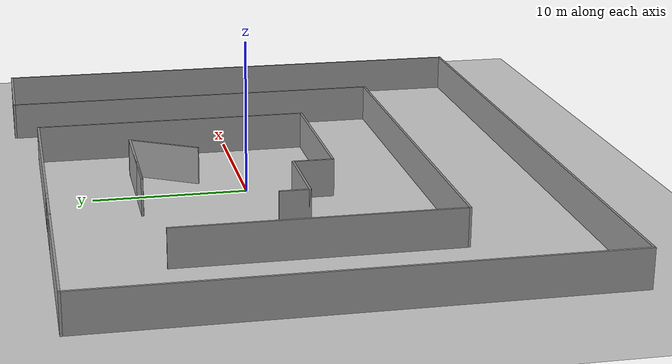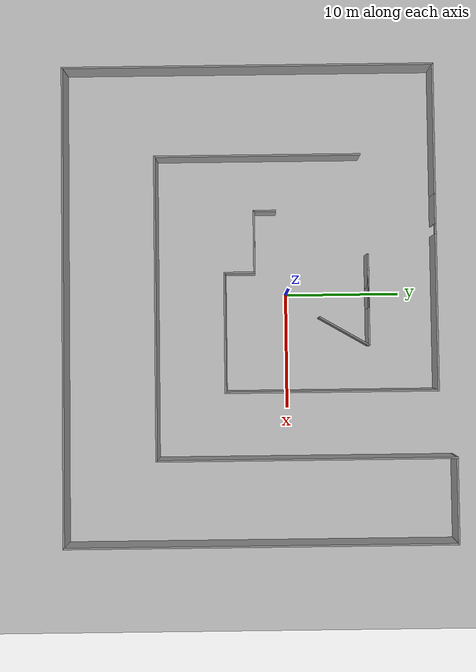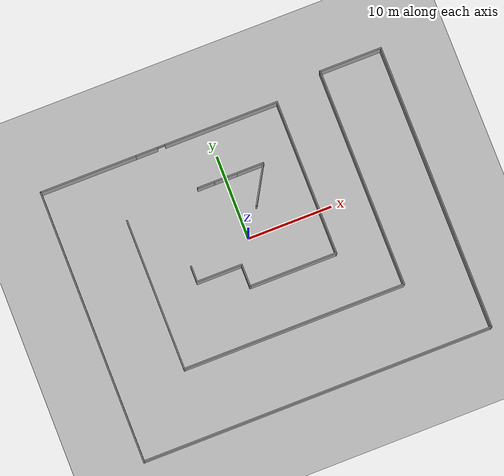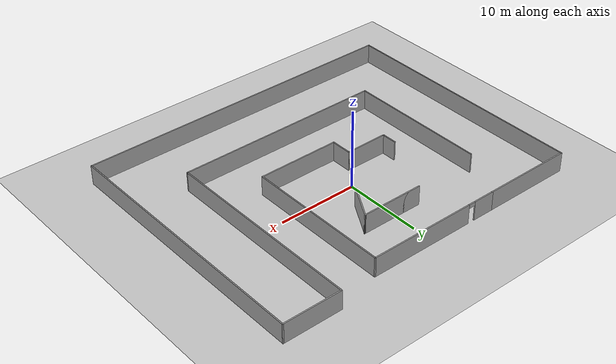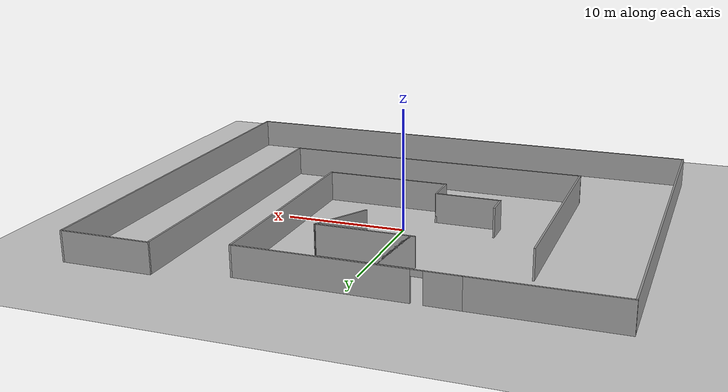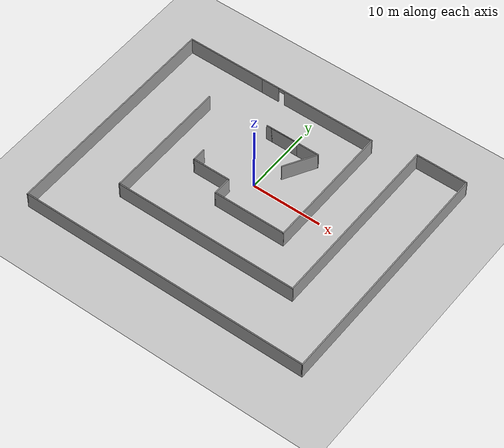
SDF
<sdf version="1.6">
 <world name="default">
  <light name="sun" type="directional">
   <pose>0 0 10 0 -0 0</pose>
   <diffuse>0.8 0.8 0.8 1</diffuse>
   <specular>0.2 0.2 0.2 1</specular>
   <attenuation>
    <range>1000</range>
    <constant>0.9</constant>
    <linear>0.01</linear>
    <quadratic>0.001</quadratic>
   </attenuation>
   <direction>-0.5 0.1 -0.9</direction>
  </light>
  <model name="ground_plane">
   <static>1</static>
   <link name="link">
    <collision name="collision">
     <geometry><plane><normal>0 0 1</normal><size>100 100</size></plane></geometry>
     <surface>
      <contact><collide_bitmask>65535</collide_bitmask></contact>
      <friction><ode><mu>100</mu><mu2>50</mu2></ode></friction>
     </surface>
    </collision>
    <visual name="visual">
     <cast_shadows>0</cast_shadows>
     <geometry><plane><normal>0 0 1</normal><size>100 100</size></plane></geometry>
     <material>
      <script><uri>file://media/materials/scripts/gazebo.material</uri><name>Gazebo/Grey</name></script>
     </material>
    </visual>
   </link>
  </model>
  <gravity>0 0 -9.8</gravity>
  <magnetic_field>6e-06 2.3e-05 -4.2e-05</magnetic_field>
  <atmosphere type="adiabatic"/>
  <physics name="default_physics" default="0" type="ode">
   <max_step_size>0.001</max_step_size>
   <real_time_factor>1</real_time_factor>
   <real_time_update_rate>1000</real_time_update_rate>
  </physics>
  <scene><ambient>0.4 0.4 0.4 1</ambient><background>0.7 0.7 0.7 1</background><shadows>1</shadows></scene>
  <audio><device>default</device></audio>
  <spherical_coordinates>
   <surface_model>EARTH_WGS84</surface_model>
   <latitude_deg>0</latitude_deg>
   <longitude_deg>0</longitude_deg>
   <elevation>0</elevation>
   <heading_deg>0</heading_deg>
  </spherical_coordinates>
  <model name="map2">
   <pose>0.823927 -2.39464 0 0 -0 0</pose>
   <link name="Wall_0">
    <collision name="Wall_0_Collision">
     <geometry><box><size>2 0.15 2.5</size></box></geometry>
     <pose>0 0 1.25 0 -0 0</pose>
    </collision>
    <visual name="Wall_0_Visual">
     <pose>0 0 1.25 0 -0 0</pose>
     <geometry><box><size>2 0.15 2.5</size></box></geometry>
     <material>
      <script><uri>file://media/materials/scripts/gazebo.material</uri><name>Gazebo/Grey</name></script>
      <ambient>1 1 1 1</ambient>
     </material>
     <meta><layer>0</layer></meta>
    </visual>
    <pose>-8.05 0.6 0 0 -0 -1.5708</pose>
   </link>
   <link name="Wall_1">
    <collision name="Wall_1_Collision">
     <geometry><box><size>5.5 0.15 2.5</size></box></geometry>
     <pose>0 0 1.25 0 -0 0</pose>
    </collision>
    <visual name="Wall_1_Visual">
     <pose>0 0 1.25 0 -0 0</pose>
     <geometry><box><size>5.5 0.15 2.5</size></box></geometry>
     <material>
      <script><uri>file://media/materials/scripts/gazebo.material</uri><name>Gazebo/Grey</name></script>
      <ambient>1 1 1 1</ambient>
     </material>
     <meta><layer>0</layer></meta>
    </visual>
    <pose>-5.375 -0.325 0 0 -0 0</pose>
   </link>
   <link name="Wall_10">
    <collision name="Wall_10_Collision">
     <geometry><box><size>7.5 0.15 2.5</size></box></geometry>
     <pose>0 0 1.25 0 -0 0</pose>
    </collision>
    <visual name="Wall_10_Visual">
     <pose>0 0 1.25 0 -0 0</pose>
     <geometry><box><size>7.5 0.15 2.5</size></box></geometry>
     <material>
      <script><uri>file://media/materials/scripts/gazebo.material</uri><name>Gazebo/Grey</name></script>
      <ambient>1 1 1 1</ambient>
     </material>
     <meta><layer>0</layer></meta>
    </visual>
    <pose>17.125 16.925 0 0 -0 3.14159</pose>
   </link>
   <link name="Wall_11">
    <collision name="Wall_11_Collision">
     <geometry><box><size>26 0.15 2.5</size></box></geometry>
     <pose>0 0 1.25 0 -0 0</pose>
    </collision>
    <visual name="Wall_11_Visual">
     <pose>0 0 1.25 0 -0 0</pose>
     <geometry><box><size>26 0.15 2.5</size></box></geometry>
     <material>
      <script><uri>file://media/materials/scripts/gazebo.material</uri><name>Gazebo/Grey</name></script>
      <ambient>1 1 1 1</ambient>
     </material>
     <meta><layer>0</layer></meta>
    </visual>
    <pose>13.45 4 0 0 -0 -1.5708</pose>
   </link>
   <link name="Wall_12">
    <collision name="Wall_12_Collision">
     <geometry><box><size>26.5 0.15 2.5</size></box></geometry>
     <pose>0 0 1.25 0 -0 0</pose>
    </collision>
    <visual name="Wall_12_Visual">
     <pose>0 0 1.25 0 -0 0</pose>
     <geometry><box><size>26.5 0.15 2.5</size></box></geometry>
     <material>
      <script><uri>file://media/materials/scripts/gazebo.material</uri><name>Gazebo/Grey</name></script>
      <ambient>1 1 1 1</ambient>
     </material>
     <meta><layer>0</layer></meta>
    </visual>
    <pose>0.275 -8.925 0 0 -0 3.14159</pose>
   </link>
   <link name="Wall_13">
    <collision name="Wall_13_Collision">
     <geometry><box><size>18 0.15 2.5</size></box></geometry>
     <pose>0 0 1.25 0 -0 0</pose>
    </collision>
    <visual name="Wall_13_Visual">
     <pose>0 0 1.25 0 -0 0</pose>
     <geometry><box><size>18 0.15 2.5</size></box></geometry>
     <material>
      <script><uri>file://media/materials/scripts/gazebo.material</uri><name>Gazebo/Grey</name></script>
      <ambient>1 1 1 1</ambient>
     </material>
     <meta><layer>0</layer></meta>
    </visual>
    <pose>-12.9 -0 0 0 -0 1.5708</pose>
   </link>
   <link name="Wall_15">
    <collision name="Wall_15_Collision">
     <geometry><box><size>4.75 0.15 2.5</size></box></geometry>
     <pose>0 0 1.25 0 -0 0</pose>
    </collision>
    <visual name="Wall_15_Visual">
     <pose>0 0 1.25 0 -0 0</pose>
     <geometry><box><size>4.75 0.15 2.5</size></box></geometry>
     <material>
      <script><uri>file://media/materials/scripts/gazebo.material</uri><name>Gazebo/Grey</name></script>
      <ambient>1 1 1 1</ambient>
     </material>
     <meta><layer>0</layer></meta>
    </visual>
    <pose>-1.85733 9.5206 0 0 -0 3.14159</pose>
   </link>
   <link name="Wall_16">
    <collision name="Wall_16_Collision">
     <geometry><box><size>8 0.15 2.5</size></box></geometry>
     <pose>0 0 1.25 0 -0 0</pose>
    </collision>
    <visual name="Wall_16_Visual">
     <pose>0 0 1.25 0 -0 0</pose>
     <geometry><box><size>8 0.15 2.5</size></box></geometry>
     <material>
      <script><uri>file://media/materials/scripts/gazebo.material</uri><name>Gazebo/Grey</name></script>
      <ambient>1 1 1 1</ambient>
     </material>
     <meta><layer>0</layer></meta>
    </visual>
    <pose>-0.232327 9.5206 0 0 -0 0</pose>
   </link>
   <link name="Wall_17">
    <collision name="Wall_17_Collision">
     <geometry><box><size>5 0.15 2.5</size></box></geometry>
     <pose>0 0 1.25 0 -0 0</pose>
    </collision>
    <visual name="Wall_17_Visual">
     <pose>0 0 1.25 0 -0 0</pose>
     <geometry><box><size>5 0.15 2.5</size></box></geometry>
     <material>
      <script><uri>file://media/materials/scripts/gazebo.material</uri><name>Gazebo/Grey</name></script>
      <ambient>1 1 1 1</ambient>
     </material>
     <meta><layer>0</layer></meta>
    </visual>
    <pose>2.48017 7.42049 0 0 -0 -2.0944</pose>
   </link>
   <link name="Wall_2">
    <collision name="Wall_2_Collision">
     <geometry><box><size>2.75 0.15 2.5</size></box></geometry>
     <pose>0 0 1.25 0 -0 0</pose>
    </collision>
    <visual name="Wall_2_Visual">
     <pose>0 0 1.25 0 -0 0</pose>
     <geometry><box><size>2.75 0.15 2.5</size></box></geometry>
     <material>
      <script><uri>file://media/materials/scripts/gazebo.material</uri><name>Gazebo/Grey</name></script>
      <ambient>1 1 1 1</ambient>
     </material>
     <meta><layer>0</layer></meta>
    </visual>
    <pose>-2.7 -1.625 0 0 -0 -1.5708</pose>
   </link>
   <link name="Wall_3">
    <collision name="Wall_3_Collision">
     <geometry><box><size>10.5 0.15 2.5</size></box></geometry>
     <pose>0 0 1.25 0 -0 0</pose>
    </collision>
    <visual name="Wall_3_Visual">
     <pose>0 0 1.25 0 -0 0</pose>
     <geometry><box><size>10.5 0.15 2.5</size></box></geometry>
     <material>
      <script><uri>file://media/materials/scripts/gazebo.material</uri><name>Gazebo/Grey</name></script>
      <ambient>1 1 1 1</ambient>
     </material>
     <meta><layer>0</layer></meta>
    </visual>
    <pose>2.475 -2.925 0 0 -0 0</pose>
   </link>
   <link name="Wall_4">
    <collision name="Wall_4_Collision">
     <geometry><box><size>18.5 0.15 2.5</size></box></geometry>
     <pose>0 0 1.25 0 -0 0</pose>
    </collision>
    <visual name="Wall_4_Visual">
     <pose>0 0 1.25 0 -0 0</pose>
     <geometry><box><size>18.5 0.15 2.5</size></box></geometry>
     <material>
      <script><uri>file://media/materials/scripts/gazebo.material</uri><name>Gazebo/Grey</name></script>
      <ambient>1 1 1 1</ambient>
     </material>
     <meta><layer>0</layer></meta>
    </visual>
    <pose>7.65 6.25 0 0 -0 1.5708</pose>
   </link>
   <link name="Wall_5">
    <pose>-0.9 15.425 0 0 -0 3.14159</pose>
    <visual name="Wall_5_Visual_0">
     <pose>-1.83168 0 1.25 0 -0 0</pose>
     <geometry><box><size>13.5866 0.15 2.5</size></box></geometry>
     <material>
      <script><uri>file://media/materials/scripts/gazebo.material</uri><name>Gazebo/Grey</name></script>
      <ambient>1 1 1 1</ambient>
     </material>
     <meta><layer>0</layer></meta>
    </visual>
    <collision name="Wall_5_Collision_0">
     <geometry><box><size>13.5866 0.15 2.5</size></box></geometry>
     <pose>-1.83168 0 1.25 0 -0 0</pose>
    </collision>
    <visual name="Wall_5_Visual_1">
     <pose>7.24332 0 1.25 0 -0 0</pose>
     <geometry><box><size>2.76335 0.15 2.5</size></box></geometry>
     <material>
      <script><uri>file://media/materials/scripts/gazebo.material</uri><name>Gazebo/Grey</name></script>
      <ambient>1 1 1 1</ambient>
     </material>
     <meta><layer>0</layer></meta>
    </visual>
    <collision name="Wall_5_Collision_1">
     <geometry><box><size>2.76335 0.15 2.5</size></box></geometry>
     <pose>7.24332 0 1.25 0 -0 0</pose>
    </collision>
    <visual name="Wall_5_Visual_2">
     <pose>5.41165 0 2.25 0 -0 0</pose>
     <geometry><box><size>0.9 0.15 0.5</size></box></geometry>
     <material>
      <script><uri>file://media/materials/scripts/gazebo.material</uri><name>Gazebo/Grey</name></script>
      <ambient>1 1 1 1</ambient>
     </material>
     <meta><layer>0</layer></meta>
    </visual>
    <collision name="Wall_5_Collision_2">
     <geometry><box><size>0.9 0.15 0.5</size></box></geometry>
     <pose>5.41165 0 2.25 0 -0 0</pose>
    </collision>
   </link>
   <link name="Wall_6">
    <collision name="Wall_6_Collision">
     <geometry><box><size>11.5 0.15 2.5</size></box></geometry>
     <pose>0 0 1.25 0 -0 0</pose>
    </collision>
    <visual name="Wall_6_Visual">
     <pose>0 0 1.25 0 -0 0</pose>
     <geometry><box><size>11.5 0.15 2.5</size></box></geometry>
     <material>
      <script><uri>file://media/materials/scripts/gazebo.material</uri><name>Gazebo/Grey</name></script>
      <ambient>1 1 1 1</ambient>
     </material>
     <meta><layer>0</layer></meta>
    </visual>
    <pose>-15.125 15.425 0 0 -0 3.14159</pose>
   </link>
   <link name="Wall_7">
    <collision name="Wall_7_Collision">
     <geometry><box><size>32.5 0.15 2.5</size></box></geometry>
     <pose>0 0 1.25 0 -0 0</pose>
    </collision>
    <visual name="Wall_7_Visual">
     <pose>0 0 1.25 0 -0 0</pose>
     <geometry><box><size>32.5 0.15 2.5</size></box></geometry>
     <material>
      <script><uri>file://media/materials/scripts/gazebo.material</uri><name>Gazebo/Grey</name></script>
      <ambient>1 1 1 1</ambient>
     </material>
     <meta><layer>0</layer></meta>
    </visual>
    <pose>-20.8 -0.75 0 0 -0 -1.5708</pose>
   </link>
   <link name="Wall_8">
    <collision name="Wall_8_Collision">
     <geometry><box><size>41.75 0.15 2.5</size></box></geometry>
     <pose>0 0 1.25 0 -0 0</pose>
    </collision>
    <visual name="Wall_8_Visual">
     <pose>0 0 1.25 0 -0 0</pose>
     <geometry><box><size>41.75 0.15 2.5</size></box></geometry>
     <material>
      <script><uri>file://media/materials/scripts/gazebo.material</uri><name>Gazebo/Grey</name></script>
      <ambient>1 1 1 1</ambient>
     </material>
     <meta><layer>0</layer></meta>
    </visual>
    <pose>0 -16.925 0 0 -0 0</pose>
   </link>
   <link name="Wall_9">
    <collision name="Wall_9_Collision">
     <geometry><box><size>34 0.15 2.5</size></box></geometry>
     <pose>0 0 1.25 0 -0 0</pose>
    </collision>
    <visual name="Wall_9_Visual">
     <pose>0 0 1.25 0 -0 0</pose>
     <geometry><box><size>34 0.15 2.5</size></box></geometry>
     <material>
      <script><uri>file://media/materials/scripts/gazebo.material</uri><name>Gazebo/Grey</name></script>
      <ambient>1 1 1 1</ambient>
     </material>
     <meta><layer>0</layer></meta>
    </visual>
    <pose>20.8 -0 0 0 -0 1.5708</pose>
   </link>
   <static>1</static>
  </model>
 </world>
</sdf>
